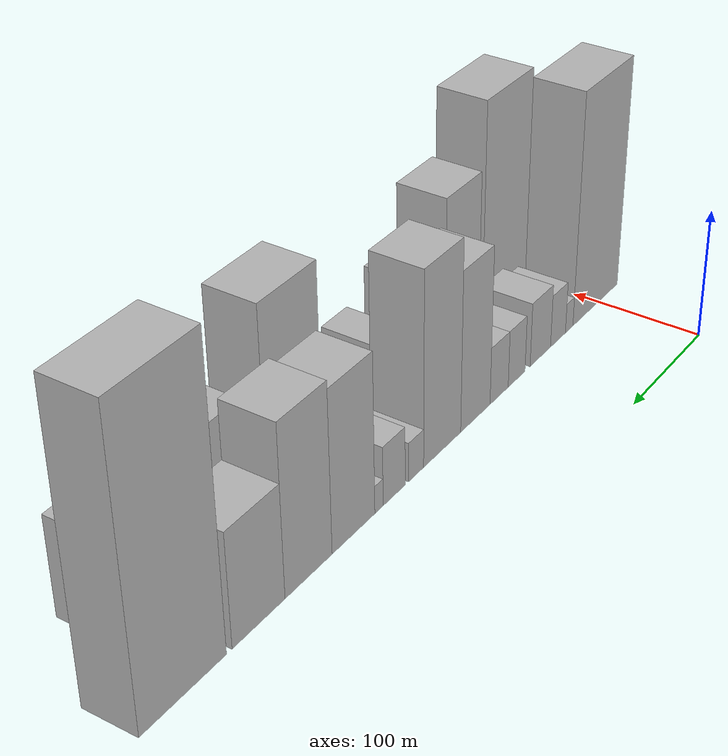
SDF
<sdf version="1.6">
 <world name="default">
  <model name="building_13">
   <static>1</static>
   <pose>100.0000 4.3595 0 0.000000 0.000000 0.000000</pose>
   <link name="link">
    <pose>0 0 91.50 0 0 0</pose>
    <collision name="collision"><geometry><box><size>40.0000 67.5020 183.0000</size></box></geometry></collision>
    <visual name="visual">
     <cast_shadows>0</cast_shadows>
     <geometry><box><size>40.0000 67.5020 183.0000</size></box></geometry>
     <material>
      <script>
       <uri>model://HANNAS_wall/materials/scripts</uri>
       <uri>model://HANNAS_wall/materials/textures</uri>
       <name>vrc/HANNAS_wall</name>
      </script>
     </material>
    </visual>
   </link>
  </model>
  <model name="building_14">
   <static>1</static>
   <pose>100.0000 43.5884 0 0.000000 0.000000 0.000000</pose>
   <link name="link">
    <pose>0 0 12.00 0 0 0</pose>
    <collision name="collision"><geometry><box><size>40.0000 10.9560 24.0000</size></box></geometry></collision>
    <visual name="visual">
     <cast_shadows>0</cast_shadows>
     <geometry><box><size>40.0000 10.9560 24.0000</size></box></geometry>
     <material>
      <script>
       <uri>model://HANNAS_wall/materials/scripts</uri>
       <uri>model://HANNAS_wall/materials/textures</uri>
       <name>vrc/HANNAS_wall</name>
      </script>
     </material>
    </visual>
   </link>
  </model>
  <model name="building_15">
   <static>1</static>
   <pose>100.0000 59.7960 0 0.000000 0.000000 0.000000</pose>
   <link name="link">
    <pose>0 0 21.00 0 0 0</pose>
    <collision name="collision"><geometry><box><size>40.0000 21.4591 42.0000</size></box></geometry></collision>
    <visual name="visual">
     <cast_shadows>0</cast_shadows>
     <geometry><box><size>40.0000 21.4591 42.0000</size></box></geometry>
     <material>
      <script>
       <uri>model://HANNAS_wall/materials/scripts</uri>
       <uri>model://HANNAS_wall/materials/textures</uri>
       <name>vrc/HANNAS_wall</name>
      </script>
     </material>
    </visual>
   </link>
  </model>
  <model name="building_16">
   <static>1</static>
   <pose>100.0000 84.7929 0 0.000000 0.000000 0.000000</pose>
   <link name="link">
    <pose>0 0 25.50 0 0 0</pose>
    <collision name="collision"><geometry><box><size>40.0000 28.5347 51.0000</size></box></geometry></collision>
    <visual name="visual">
     <cast_shadows>0</cast_shadows>
     <geometry><box><size>40.0000 28.5347 51.0000</size></box></geometry>
     <material>
      <script>
       <uri>model://HANNAS_wall/materials/scripts</uri>
       <uri>model://HANNAS_wall/materials/textures</uri>
       <name>vrc/HANNAS_wall</name>
      </script>
     </material>
    </visual>
   </link>
  </model>
  <model name="building_17">
   <static>1</static>
   <pose>100.0000 117.4053 0 0.000000 0.000000 0.000000</pose>
   <link name="link">
    <pose>0 0 22.50 0 0 0</pose>
    <collision name="collision"><geometry><box><size>40.0000 22.6900 45.0000</size></box></geometry></collision>
    <visual name="visual">
     <cast_shadows>0</cast_shadows>
     <geometry><box><size>40.0000 22.6900 45.0000</size></box></geometry>
     <material>
      <script>
       <uri>model://HANNAS_wall/materials/scripts</uri>
       <uri>model://HANNAS_wall/materials/textures</uri>
       <name>vrc/HANNAS_wall</name>
      </script>
     </material>
    </visual>
   </link>
  </model>
  <model name="building_18">
   <static>1</static>
   <pose>100.0000 140.6552 0 0.000000 0.000000 0.000000</pose>
   <link name="link">
    <pose>0 0 22.50 0 0 0</pose>
    <collision name="collision"><geometry><box><size>40.0000 23.8099 45.0000</size></box></geometry></collision>
    <visual name="visual">
     <cast_shadows>0</cast_shadows>
     <geometry><box><size>40.0000 23.8099 45.0000</size></box></geometry>
     <material>
      <script>
       <uri>model://HANNAS_wall/materials/scripts</uri>
       <uri>model://HANNAS_wall/materials/textures</uri>
       <name>vrc/HANNAS_wall</name>
      </script>
     </material>
    </visual>
   </link>
  </model>
  <model name="building_19">
   <static>1</static>
   <pose>100.0000 171.1310 0 0.000000 0.000000 0.000000</pose>
   <link name="link">
    <pose>0 0 61.50 0 0 0</pose>
    <collision name="collision"><geometry><box><size>40.0000 37.1417 123.0000</size></box></geometry></collision>
    <visual name="visual">
     <cast_shadows>0</cast_shadows>
     <geometry><box><size>40.0000 37.1417 123.0000</size></box></geometry>
     <material>
      <script>
       <uri>model://HANNAS_wall/materials/scripts</uri>
       <uri>model://HANNAS_wall/materials/textures</uri>
       <name>vrc/HANNAS_wall</name>
      </script>
     </material>
    </visual>
   </link>
  </model>
  <model name="building_20">
   <static>1</static>
   <pose>100.0000 212.0285 0 0.000000 0.000000 0.000000</pose>
   <link name="link">
    <pose>0 0 73.50 0 0 0</pose>
    <collision name="collision"><geometry><box><size>40.0000 44.6534 147.0000</size></box></geometry></collision>
    <visual name="visual">
     <cast_shadows>0</cast_shadows>
     <geometry><box><size>40.0000 44.6534 147.0000</size></box></geometry>
     <material>
      <script>
       <uri>model://HANNAS_wall/materials/scripts</uri>
       <uri>model://HANNAS_wall/materials/textures</uri>
       <name>vrc/HANNAS_wall</name>
      </script>
     </material>
    </visual>
   </link>
  </model>
  <model name="building_21">
   <static>1</static>
   <pose>100.0000 243.0158 0 0.000000 0.000000 0.000000</pose>
   <link name="link">
    <pose>0 0 15.00 0 0 0</pose>
    <collision name="collision"><geometry><box><size>40.0000 17.3211 30.0000</size></box></geometry></collision>
    <visual name="visual">
     <cast_shadows>0</cast_shadows>
     <geometry><box><size>40.0000 17.3211 30.0000</size></box></geometry>
     <material>
      <script>
       <uri>model://HANNAS_wall/materials/scripts</uri>
       <uri>model://HANNAS_wall/materials/textures</uri>
       <name>vrc/HANNAS_wall</name>
      </script>
     </material>
    </visual>
   </link>
  </model>
  <model name="building_22">
   <static>1</static>
   <pose>100.0000 268.0536 0 0.000000 0.000000 0.000000</pose>
   <link name="link">
    <pose>0 0 22.50 0 0 0</pose>
    <collision name="collision"><geometry><box><size>40.0000 24.7546 45.0000</size></box></geometry></collision>
    <visual name="visual">
     <cast_shadows>0</cast_shadows>
     <geometry><box><size>40.0000 24.7546 45.0000</size></box></geometry>
     <material>
      <script>
       <uri>model://HANNAS_wall/materials/scripts</uri>
       <uri>model://HANNAS_wall/materials/textures</uri>
       <name>vrc/HANNAS_wall</name>
      </script>
     </material>
    </visual>
   </link>
  </model>
  <model name="building_23">
   <static>1</static>
   <pose>100.0000 285.0115 0 0.000000 0.000000 0.000000</pose>
   <link name="link">
    <pose>0 0 10.50 0 0 0</pose>
    <collision name="collision"><geometry><box><size>40.0000 9.1611 21.0000</size></box></geometry></collision>
    <visual name="visual">
     <cast_shadows>0</cast_shadows>
     <geometry><box><size>40.0000 9.1611 21.0000</size></box></geometry>
     <material>
      <script>
       <uri>model://HANNAS_wall/materials/scripts</uri>
       <uri>model://HANNAS_wall/materials/textures</uri>
       <name>vrc/HANNAS_wall</name>
      </script>
     </material>
    </visual>
   </link>
  </model>
  <model name="building_24">
   <static>1</static>
   <pose>100.0000 312.2722 0 0.000000 0.000000 0.000000</pose>
   <link name="link">
    <pose>0 0 60.00 0 0 0</pose>
    <collision name="collision"><geometry><box><size>40.0000 45.3604 120.0000</size></box></geometry></collision>
    <visual name="visual">
     <cast_shadows>0</cast_shadows>
     <geometry><box><size>40.0000 45.3604 120.0000</size></box></geometry>
     <material>
      <script>
       <uri>model://HANNAS_wall/materials/scripts</uri>
       <uri>model://HANNAS_wall/materials/textures</uri>
       <name>vrc/HANNAS_wall</name>
      </script>
     </material>
    </visual>
   </link>
  </model>
  <model name="building_25">
   <static>1</static>
   <pose>100.0000 358.5062 0 0.000000 0.000000 0.000000</pose>
   <link name="link">
    <pose>0 0 63.00 0 0 0</pose>
    <collision name="collision"><geometry><box><size>40.0000 47.1075 126.0000</size></box></geometry></collision>
    <visual name="visual">
     <cast_shadows>0</cast_shadows>
     <geometry><box><size>40.0000 47.1075 126.0000</size></box></geometry>
     <material>
      <script>
       <uri>model://HANNAS_wall/materials/scripts</uri>
       <uri>model://HANNAS_wall/materials/textures</uri>
       <name>vrc/HANNAS_wall</name>
      </script>
     </material>
    </visual>
   </link>
  </model>
  <model name="building_26">
   <static>1</static>
   <pose>100.0000 406.8264 0 0.000000 0.000000 0.000000</pose>
   <link name="link">
    <pose>0 0 42.00 0 0 0</pose>
    <collision name="collision"><geometry><box><size>40.0000 49.5330 84.0000</size></box></geometry></collision>
    <visual name="visual">
     <cast_shadows>0</cast_shadows>
     <geometry><box><size>40.0000 49.5330 84.0000</size></box></geometry>
     <material>
      <script>
       <uri>model://HANNAS_wall/materials/scripts</uri>
       <uri>model://HANNAS_wall/materials/textures</uri>
       <name>vrc/HANNAS_wall</name>
      </script>
     </material>
    </visual>
   </link>
  </model>
  <model name="building_27">
   <static>1</static>
   <pose>100.0000 474.0046 0 0.000000 0.000000 0.000000</pose>
   <link name="link">
    <pose>0 0 109.50 0 0 0</pose>
    <collision name="collision"><geometry><box><size>40.0000 74.8234 219.0000</size></box></geometry></collision>
    <visual name="visual">
     <cast_shadows>0</cast_shadows>
     <geometry><box><size>40.0000 74.8234 219.0000</size></box></geometry>
     <material>
      <script>
       <uri>model://HANNAS_wall/materials/scripts</uri>
       <uri>model://HANNAS_wall/materials/textures</uri>
       <name>vrc/HANNAS_wall</name>
      </script>
     </material>
    </visual>
   </link>
  </model>
  <model name="building_41">
   <static>1</static>
   <pose>160.0000 32.3818 0 0.000000 0.000000 0.000000</pose>
   <link name="link">
    <pose>0 0 85.50 0 0 0</pose>
    <collision name="collision"><geometry><box><size>40.0000 61.8300 171.0000</size></box></geometry></collision>
    <visual name="visual">
     <cast_shadows>0</cast_shadows>
     <geometry><box><size>40.0000 61.8300 171.0000</size></box></geometry>
     <material>
      <script>
       <uri>model://HANNAS_wall/materials/scripts</uri>
       <uri>model://HANNAS_wall/materials/textures</uri>
       <name>vrc/HANNAS_wall</name>
      </script>
     </material>
    </visual>
   </link>
  </model>
  <model name="building_42">
   <static>1</static>
   <pose>160.0000 90.7094 0 0.000000 0.000000 0.000000</pose>
   <link name="link">
    <pose>0 0 60.00 0 0 0</pose>
    <collision name="collision"><geometry><box><size>40.0000 44.8252 120.0000</size></box></geometry></collision>
    <visual name="visual">
     <cast_shadows>0</cast_shadows>
     <geometry><box><size>40.0000 44.8252 120.0000</size></box></geometry>
     <material>
      <script>
       <uri>model://HANNAS_wall/materials/scripts</uri>
       <uri>model://HANNAS_wall/materials/textures</uri>
       <name>vrc/HANNAS_wall</name>
      </script>
     </material>
    </visual>
   </link>
  </model>
  <model name="building_43">
   <static>1</static>
   <pose>160.0000 132.9810 0 0.000000 0.000000 0.000000</pose>
   <link name="link">
    <pose>0 0 37.50 0 0 0</pose>
    <collision name="collision"><geometry><box><size>40.0000 39.7178 75.0000</size></box></geometry></collision>
    <visual name="visual">
     <cast_shadows>0</cast_shadows>
     <geometry><box><size>40.0000 39.7178 75.0000</size></box></geometry>
     <material>
      <script>
       <uri>model://HANNAS_wall/materials/scripts</uri>
       <uri>model://HANNAS_wall/materials/textures</uri>
       <name>vrc/HANNAS_wall</name>
      </script>
     </material>
    </visual>
   </link>
  </model>
  <model name="building_44">
   <static>1</static>
   <pose>160.0000 163.3524 0 0.000000 0.000000 0.000000</pose>
   <link name="link">
    <pose>0 0 18.00 0 0 0</pose>
    <collision name="collision"><geometry><box><size>40.0000 21.0250 36.0000</size></box></geometry></collision>
    <visual name="visual">
     <cast_shadows>0</cast_shadows>
     <geometry><box><size>40.0000 21.0250 36.0000</size></box></geometry>
     <material>
      <script>
       <uri>model://HANNAS_wall/materials/scripts</uri>
       <uri>model://HANNAS_wall/materials/textures</uri>
       <name>vrc/HANNAS_wall</name>
      </script>
     </material>
    </visual>
   </link>
  </model>
  <model name="building_45">
   <static>1</static>
   <pose>160.0000 188.4836 0 0.000000 0.000000 0.000000</pose>
   <link name="link">
    <pose>0 0 27.00 0 0 0</pose>
    <collision name="collision"><geometry><box><size>40.0000 29.2374 54.0000</size></box></geometry></collision>
    <visual name="visual">
     <cast_shadows>0</cast_shadows>
     <geometry><box><size>40.0000 29.2374 54.0000</size></box></geometry>
     <material>
      <script>
       <uri>model://HANNAS_wall/materials/scripts</uri>
       <uri>model://HANNAS_wall/materials/textures</uri>
       <name>vrc/HANNAS_wall</name>
      </script>
     </material>
    </visual>
   </link>
  </model>
  <model name="building_46">
   <static>1</static>
   <pose>160.0000 216.5200 0 0.000000 0.000000 0.000000</pose>
   <link name="link">
    <pose>0 0 22.50 0 0 0</pose>
    <collision name="collision"><geometry><box><size>40.0000 26.8355 45.0000</size></box></geometry></collision>
    <visual name="visual">
     <cast_shadows>0</cast_shadows>
     <geometry><box><size>40.0000 26.8355 45.0000</size></box></geometry>
     <material>
      <script>
       <uri>model://HANNAS_wall/materials/scripts</uri>
       <uri>model://HANNAS_wall/materials/textures</uri>
       <name>vrc/HANNAS_wall</name>
      </script>
     </material>
    </visual>
   </link>
  </model>
  <model name="building_47">
   <static>1</static>
   <pose>160.0000 245.0165 0 0.000000 0.000000 0.000000</pose>
   <link name="link">
    <pose>0 0 27.00 0 0 0</pose>
    <collision name="collision"><geometry><box><size>40.0000 30.1574 54.0000</size></box></geometry></collision>
    <visual name="visual">
     <cast_shadows>0</cast_shadows>
     <geometry><box><size>40.0000 30.1574 54.0000</size></box></geometry>
     <material>
      <script>
       <uri>model://HANNAS_wall/materials/scripts</uri>
       <uri>model://HANNAS_wall/materials/textures</uri>
       <name>vrc/HANNAS_wall</name>
      </script>
     </material>
    </visual>
   </link>
  </model>
  <model name="building_48">
   <static>1</static>
   <pose>160.0000 289.3478 0 0.000000 0.000000 0.000000</pose>
   <link name="link">
    <pose>0 0 73.50 0 0 0</pose>
    <collision name="collision"><geometry><box><size>40.0000 58.5053 147.0000</size></box></geometry></collision>
    <visual name="visual">
     <cast_shadows>0</cast_shadows>
     <geometry><box><size>40.0000 58.5053 147.0000</size></box></geometry>
     <material>
      <script>
       <uri>model://HANNAS_wall/materials/scripts</uri>
       <uri>model://HANNAS_wall/materials/textures</uri>
       <name>vrc/HANNAS_wall</name>
      </script>
     </material>
    </visual>
   </link>
  </model>
  <model name="building_49">
   <static>1</static>
   <pose>160.0000 330.3942 0 0.000000 0.000000 0.000000</pose>
   <link name="link">
    <pose>0 0 15.00 0 0 0</pose>
    <collision name="collision"><geometry><box><size>40.0000 17.5875 30.0000</size></box></geometry></collision>
    <visual name="visual">
     <cast_shadows>0</cast_shadows>
     <geometry><box><size>40.0000 17.5875 30.0000</size></box></geometry>
     <material>
      <script>
       <uri>model://HANNAS_wall/materials/scripts</uri>
       <uri>model://HANNAS_wall/materials/textures</uri>
       <name>vrc/HANNAS_wall</name>
      </script>
     </material>
    </visual>
   </link>
  </model>
  <model name="building_50">
   <static>1</static>
   <pose>160.0000 355.6045 0 0.000000 0.000000 0.000000</pose>
   <link name="link">
    <pose>0 0 46.50 0 0 0</pose>
    <collision name="collision"><geometry><box><size>40.0000 32.8331 93.0000</size></box></geometry></collision>
    <visual name="visual">
     <cast_shadows>0</cast_shadows>
     <geometry><box><size>40.0000 32.8331 93.0000</size></box></geometry>
     <material>
      <script>
       <uri>model://HANNAS_wall/materials/scripts</uri>
       <uri>model://HANNAS_wall/materials/textures</uri>
       <name>vrc/HANNAS_wall</name>
      </script>
     </material>
    </visual>
   </link>
  </model>
  <model name="building_51">
   <static>1</static>
   <pose>160.0000 395.7651 0 0.000000 0.000000 0.000000</pose>
   <link name="link">
    <pose>0 0 75.00 0 0 0</pose>
    <collision name="collision"><geometry><box><size>40.0000 47.4882 150.0000</size></box></geometry></collision>
    <visual name="visual">
     <cast_shadows>0</cast_shadows>
     <geometry><box><size>40.0000 47.4882 150.0000</size></box></geometry>
     <material>
      <script>
       <uri>model://HANNAS_wall/materials/scripts</uri>
       <uri>model://HANNAS_wall/materials/textures</uri>
       <name>vrc/HANNAS_wall</name>
      </script>
     </material>
    </visual>
   </link>
  </model>
  <model name="building_52">
   <static>1</static>
   <pose>160.0000 443.8453 0 0.000000 0.000000 0.000000</pose>
   <link name="link">
    <pose>0 0 37.50 0 0 0</pose>
    <collision name="collision"><geometry><box><size>40.0000 42.6722 75.0000</size></box></geometry></collision>
    <visual name="visual">
     <cast_shadows>0</cast_shadows>
     <geometry><box><size>40.0000 42.6722 75.0000</size></box></geometry>
     <material>
      <script>
       <uri>model://HANNAS_wall/materials/scripts</uri>
       <uri>model://HANNAS_wall/materials/textures</uri>
       <name>vrc/HANNAS_wall</name>
      </script>
     </material>
    </visual>
   </link>
  </model>
 </world>
</sdf>
